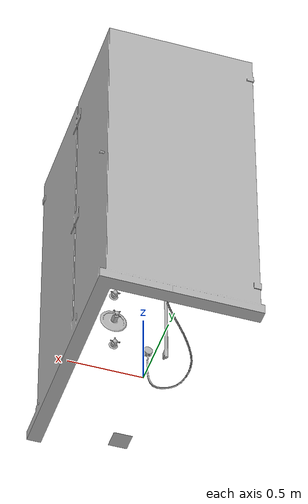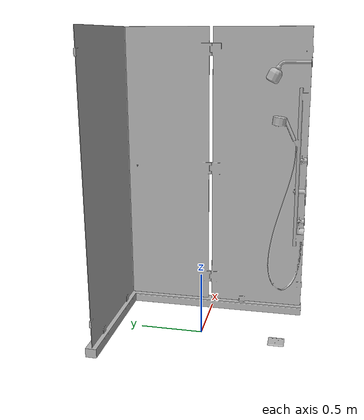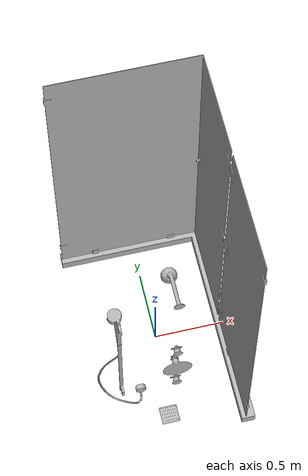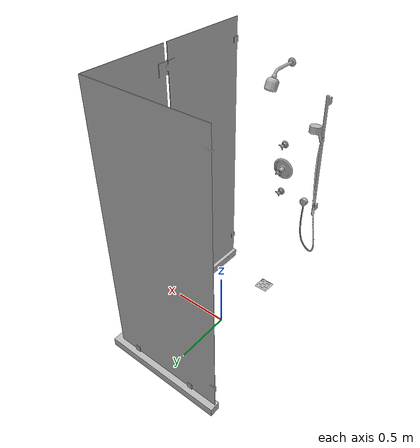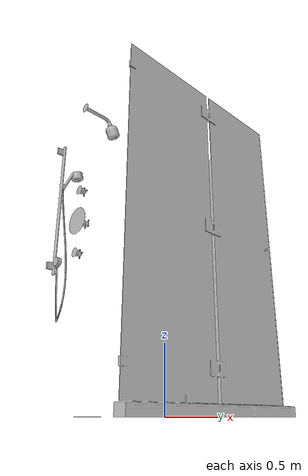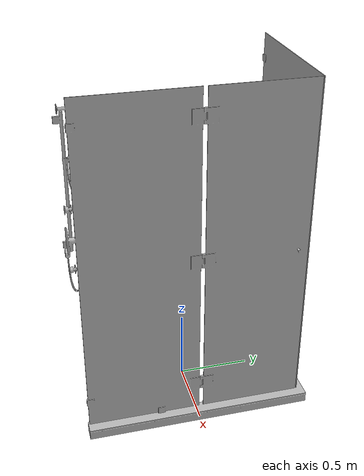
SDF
<?xml version='1.0'?>
<sdf version='1.4'>
  <model name='s__1285'>
    <pose>0 0 0 0 0 0</pose>
    <static>true</static>
    <link name='link'>
      <collision name='collision'>
        <pose>0 0 0 0 0 0</pose>
        <geometry>
          <box>
            <size>1.07 1.56 2</size>
          </box>
        </geometry>
      </collision>
      <visual name='visual'>
        <pose>0 0 0 0 0 0</pose>
        <geometry>
          <mesh><uri>model://s__1285/s__1285.dae</uri></mesh>
        </geometry>
      </visual>
    </link>
  </model>
</sdf>
